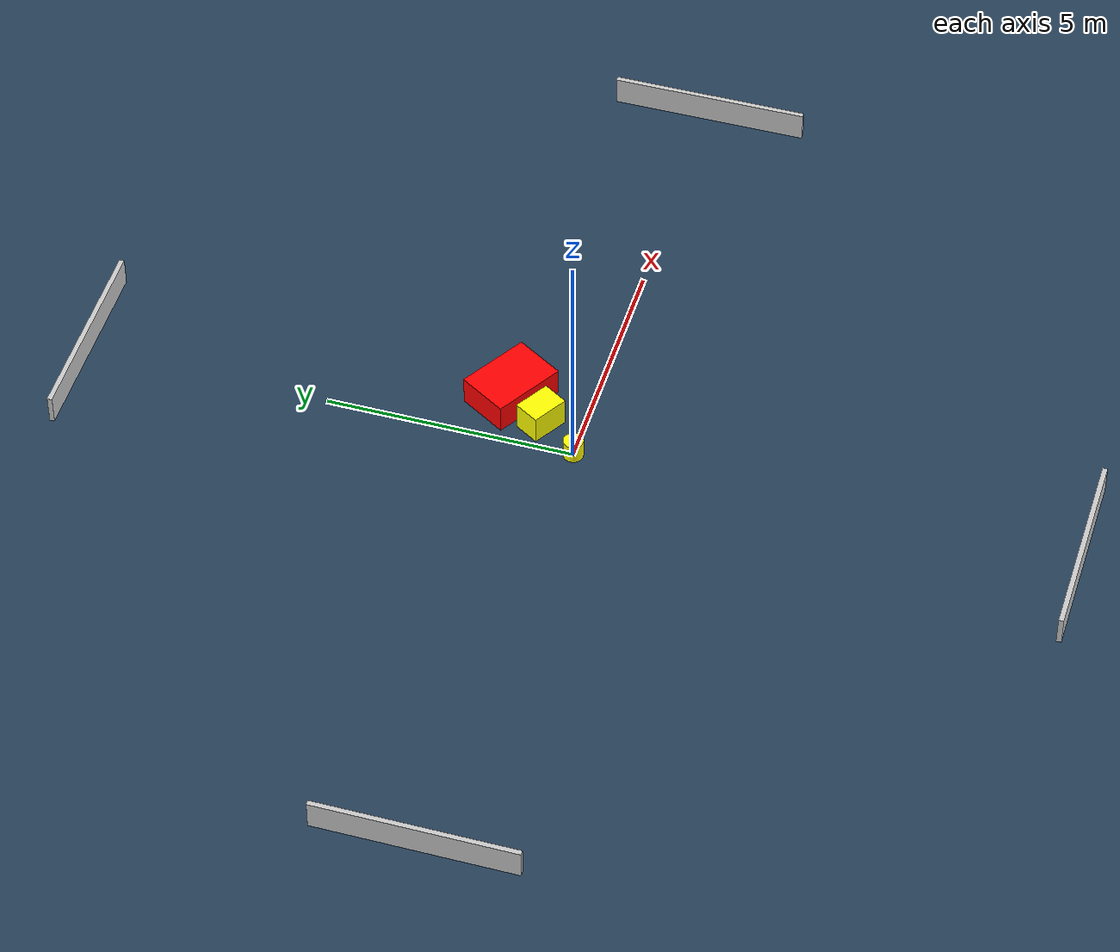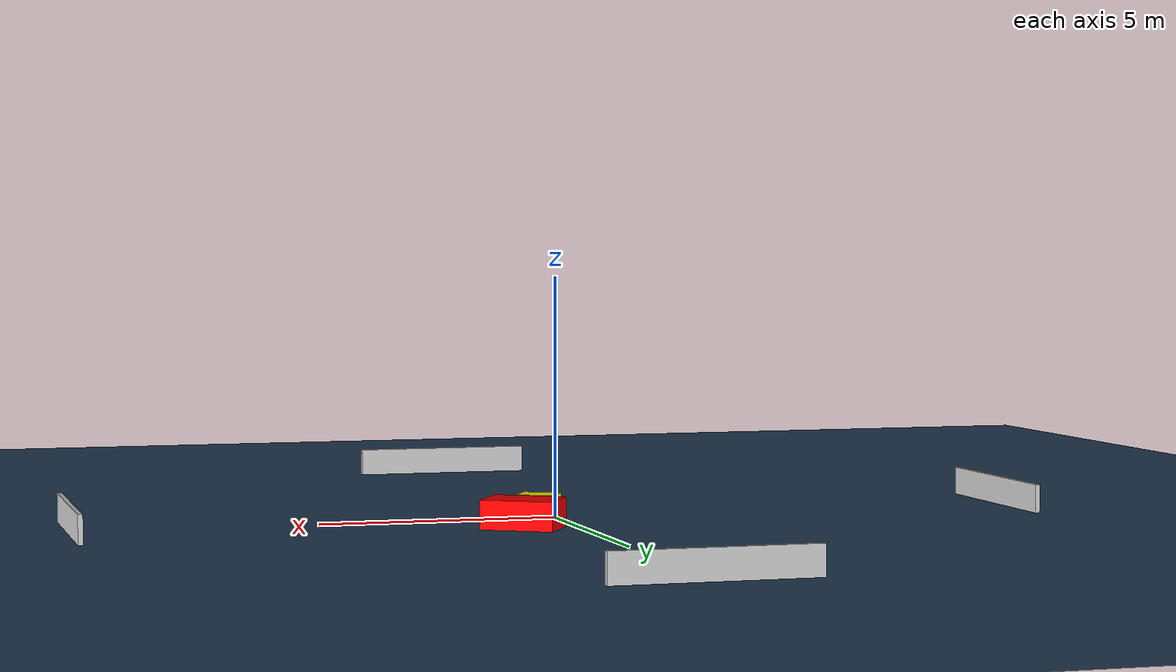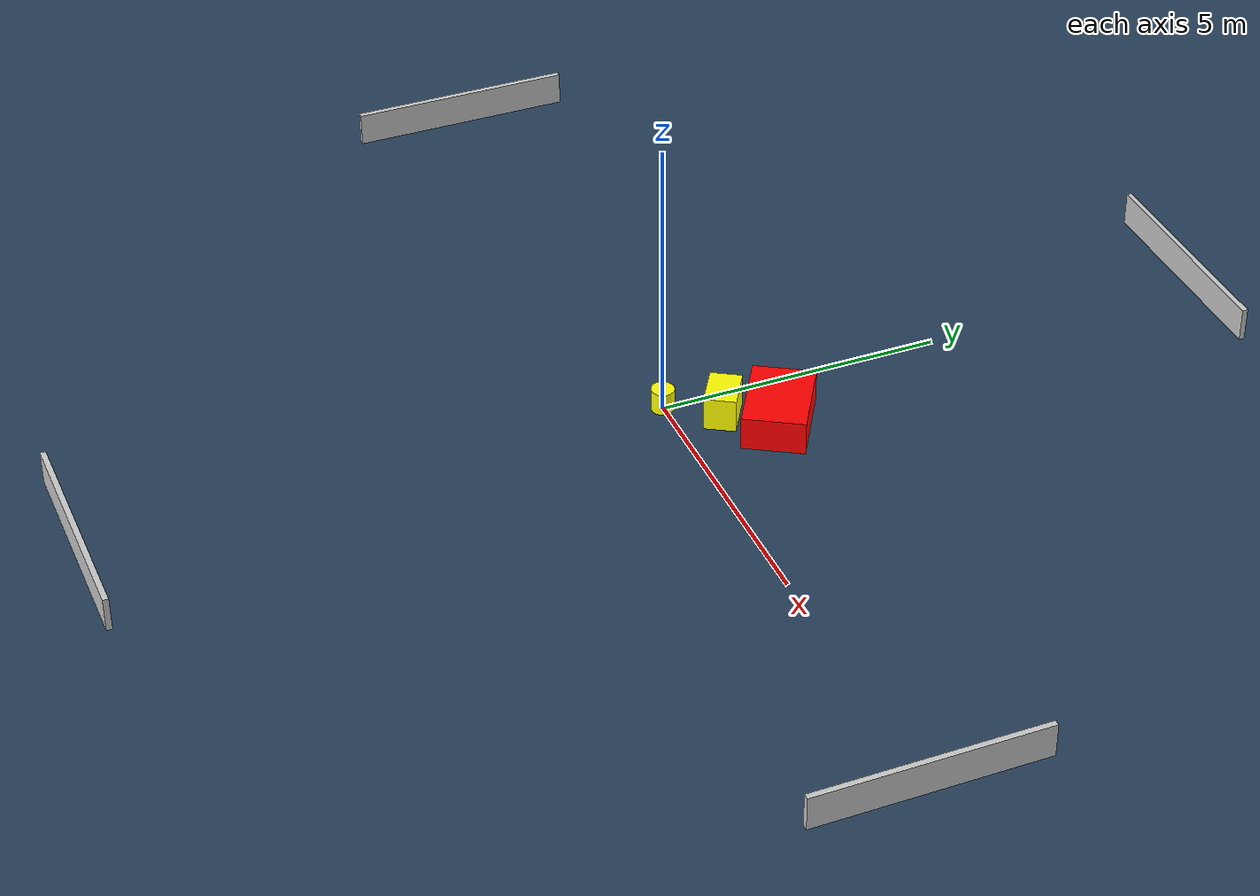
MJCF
<?xml version="1.0" ?>
<mujoco model="generated_environment">
  <option timestep="0.01" integrator="RK4" cone="elliptic"/>
  <default>
    <geom density="1"/>
  </default>
  <asset>
    <texture builtin="gradient" height="3072" name="skybox" rgb1="0.3 0.5 0.7" rgb2="0 0 0" type="skybox" width="512"/>
    <texture builtin="checker" height="300" name="groundplane" rgb1="0.2 0.3 0.4" rgb2="0.1 0.2 0.3" type="2d" width="300"/>
    <material name="groundplane" reflectance="0.2" texrepeat="5 5" texture="groundplane"/>
  </asset>
  <worldbody>
    <light dir="0 0 -1" directional="true" pos="0 0 1.5"/>
    <geom condim="3" friction="0.5 0.005 0.001" material="groundplane" name="floor" pos="0 0 0" size="0 0 0.05" type="plane"/>
    <body name="walls">
      <geom name="wall_1" condim="4" pos="-10.0 0.0 0.3" rgba="0.800000011920929 0.800000011920929 0.800000011920929 1.0" size="0.05 2.0 0.3" type="box"/>
      <geom name="wall_2" condim="4" pos="10.0 0.0 0.3" rgba="0.800000011920929 0.800000011920929 0.800000011920929 1.0" size="0.05 2.0 0.3" type="box"/>
      <geom name="wall_3" condim="4" pos="0.0 -10.0 0.3" rgba="0.800000011920929 0.800000011920929 0.800000011920929 1.0" size="2.0 0.05 0.3" type="box"/>
      <geom name="wall_4" condim="4" pos="0.0 10.0 0.3" rgba="0.800000011920929 0.800000011920929 0.800000011920929 1.0" size="2.0 0.05 0.3" type="box"/>
    </body>
    <body name="robot">
      <joint name="joint_x" type="slide" pos="0 0 0" axis="1 0 0"/>
      <joint name="joint_y" type="slide" pos="0 0 0" axis="0 1 0"/>
      <geom name="robot" type="cylinder" pos="0.0 0.0 0.2" size="0.2 0.2 0.0" mass="5.0" friction="1.0 0.005 0.0001" condim="4" rgba="1.0 1.0 0.0 1.0"/>
    </body>
    <body name="obstacle_1_movable">
      <geom name="obstacle_1_movable" condim="4" pos="0.6005008973576237 0.8332597167781514 0.3" euler="0 0 328.66927733385756" friction="0.0 0.005 0.001" rgba="1.0 1.0 0.0 1.0" size="0.38613321626514086 0.27550888855041256 0.3" type="box" mass="0.1"/>
      <joint type="free"/>
    </body>
    <body name="obstacle_2_static">
      <geom name="obstacle_2_static" condim="4" pos="1.1479934880628841 1.6046368343277169 0.3" euler="0 0 58.85661498494362" friction="0.0 0.005 0.001" rgba="1.0 0.0 0.0 1.0" size="0.5396518470522561 0.7580976121692797 0.3" type="box"/>
    </body>
  </worldbody>
  <actuator>
    <motor name="actuator_x" joint="joint_x" gear="1" ctrlrange="-1 1"/>
    <motor name="actuator_y" joint="joint_y" gear="1" ctrlrange="-1 1"/>
  </actuator>
</mujoco>
